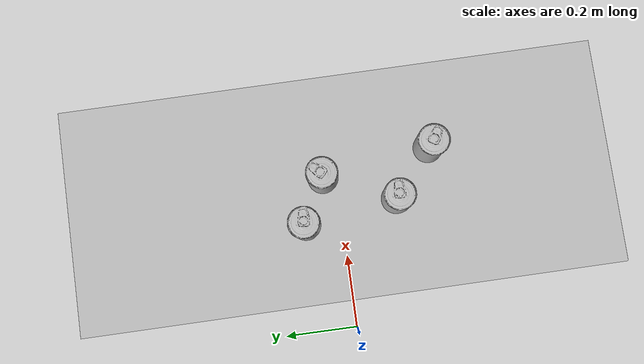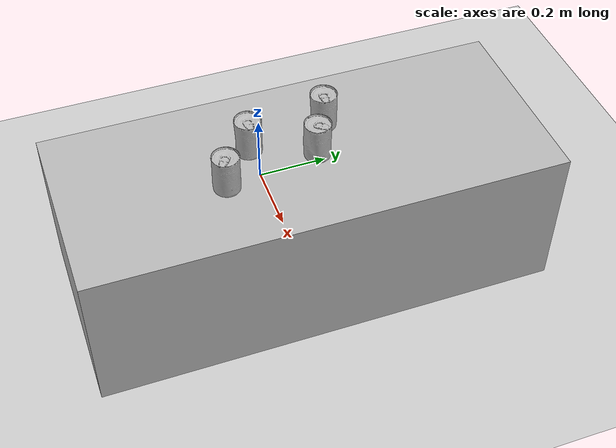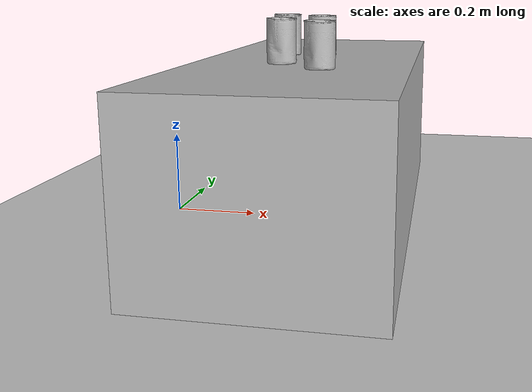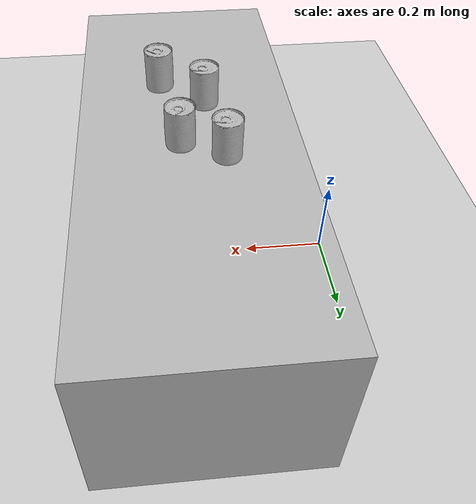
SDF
<?xml version="1.0" ?>
<sdf version="1.4">

  <world name="default">
    <include>
      <uri>model://ground_plane</uri>
    </include>

    <include>
      <uri>model://sun</uri>
    </include>

    <gravity>0 0 -9.8</gravity>
    <magnetic_field>6e-06 2.3e-05 -4.2e-05</magnetic_field>
    <atmosphere type='adiabatic'/>

    <light name='user_point_light' type='point'>
      <pose frame=''>0.730235 0 1 0 -0 0</pose>
      <diffuse>0.5 0.5 0.5 1</diffuse>
      <specular>0.1 0.1 0.1 1</specular>
      <attenuation>
        <range>20</range>
        <constant>0.5</constant>
        <linear>0.01</linear>
        <quadratic>0.001</quadratic>
      </attenuation>
      <cast_shadows>0</cast_shadows>
      <direction>0 0 -1</direction>
    </light>

    <!--physics type="ode"-->

    <include>
      <uri>model://MPNet_TableCenter</uri>
      <pose>0.35 0 0.2 0 0 0</pose>
    </include>

    <include>
      <uri>model://cracker_box</uri>
      <pose>0.276506 0.085502 0.4 0 0 -0.407427</pose>
    </include>

    <include>
      <uri>model://tomato_soup_can</uri>
      <pose>0.407051 -0.203939 0.4 0 0 -0.87517</pose>
    </include>

    <include>
      <uri>model://mustard_bottle</uri>
      <pose>0.306771 -0.117729 0.4 0 0 -0.358427</pose>
    </include>

    <include>
      <uri>model://sugar_box</uri>
      <pose>0.372242 0.036422 0.4 0 0 0.517227</pose>
    </include>

  </world>
</sdf>

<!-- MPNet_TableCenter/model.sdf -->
<sdf version="1.5">
  <model name="MPNet_TableCenter">
    <pose frame="world">1 -0.3 0.0 0 0 0</pose>
    <static>true</static>
    <link name="MPNet_TableCenter_link">
      <inertial>
        <mass>0.1</mass>
      </inertial>
      <visual name="MPNet_TableCenter_visual">
        <geometry>
          <box>
            <size>0.5 1.2 0.4</size>
          </box>
        </geometry>
      </visual>
      <collision name='MPNet_TableCenter_collision'>
        <laser_retro>0</laser_retro>
        <max_contacts>10</max_contacts>
        <geometry>
          <box>
            <size>0.5 1.2 0.4</size>
          </box>
        </geometry>
        <surface>
	  <friction>
            <ode>
              <mu>1</mu>
              <mu2>1</mu2>
              <fdir1>0 0 0</fdir1>
              <slip1>0</slip1>
              <slip2>0</slip2>
            </ode>
            <torsional>
              <coefficient>1</coefficient>
              <patch_radius>0</patch_radius>
              <surface_radius>0</surface_radius>
              <use_patch_radius>1</use_patch_radius>
              <ode>
                <slip>0</slip>
              </ode>
            </torsional>
          </friction>
          <bounce>
            <restitution_coefficient>0</restitution_coefficient>
            <threshold>1e+06</threshold>
          </bounce>
          <contact>
            <collide_without_contact>0</collide_without_contact>
            <collide_without_contact_bitmask>1</collide_without_contact_bitmask>
            <collide_bitmask>1</collide_bitmask>
            <ode>
              <soft_cfm>0</soft_cfm>
              <soft_erp>0.2</soft_erp>
              <kp>1e+13</kp>
              <kd>1</kd>
              <max_vel>0.01</max_vel>
              <min_depth>0</min_depth>
            </ode>
            <bullet>
              <split_impulse>1</split_impulse>
              <split_impulse_penetration_threshold>-0.01</split_impulse_penetration_threshold>
              <soft_cfm>0</soft_cfm>
              <soft_erp>0.2</soft_erp>
              <kp>1e+13</kp>
              <kd>1</kd>
            </bullet>
          </contact>
        </surface>
      </collision>
    </link>
  </model>
</sdf>

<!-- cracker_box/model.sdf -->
<sdf version='1.7'>
  <model name='cracker_box'>
    <link name='body'>
      <inertial>
        <mass>1</mass>
        <pose>-0.014854 -0.014205 0.102205 0 -0 0</pose>
        <inertia>
          <ixx>0.00582845</ixx>
          <ixy>0</ixy>
          <ixz>3.719e-05</ixz>
          <iyy>0.00409288</iyy>
          <iyz>1.327e-05</iyz>
          <izz>0.00243189</izz>
        </inertia>
      </inertial>
      <self_collide>1</self_collide>
      <enable_wind>0</enable_wind>
      <kinematic>0</kinematic>
      <pose>0 0 0 0 -0 0</pose>
      <gravity>1</gravity>
      <visual name='visual'>
        <geometry>
          <mesh>
            <uri>model://003_cracker_box_textured/textured.dae</uri>
          </mesh>
        </geometry>
        <material>
          <shader type='pixel'>
            <normal_map>__default__</normal_map>
          </shader>
        </material>
        <pose>0 0 0 0 -0 0</pose>
        <transparency>0</transparency>
        <cast_shadows>1</cast_shadows>
      </visual>
      <collision name='collision'>
        <laser_retro>0</laser_retro>
        <max_contacts>10</max_contacts>
        <pose>0 0 0 0 -0 0</pose>
        <geometry>
          <mesh>
            <uri>model://003_cracker_box_textured/textured.dae</uri>
            <scale>1 1 1</scale>
          </mesh>
        </geometry>
        <surface>
          <friction>
            <ode>
              <mu>0.8</mu>
              <mu2>0.8</mu2>
              <fdir1>0 0 0</fdir1>
              <slip1>0</slip1>
              <slip2>0</slip2>
            </ode>
            <torsional>
              <coefficient>1</coefficient>
              <patch_radius>0</patch_radius>
              <surface_radius>0</surface_radius>
              <use_patch_radius>1</use_patch_radius>
              <ode>
                <slip>0</slip>
              </ode>
            </torsional>
          </friction>
          <bounce>
            <restitution_coefficient>0</restitution_coefficient>
            <threshold>1e+06</threshold>
          </bounce>
          <contact>
            <collide_without_contact>0</collide_without_contact>
            <collide_without_contact_bitmask>1</collide_without_contact_bitmask>
            <collide_bitmask>1</collide_bitmask>
            <ode>
              <soft_cfm>0</soft_cfm>
              <soft_erp>0.2</soft_erp>
              <kp>1e+06</kp>
              <kd>1</kd>
              <max_vel>0</max_vel>
              <min_depth>0</min_depth>
            </ode>
            <bullet>
              <split_impulse>1</split_impulse>
              <split_impulse_penetration_threshold>-0.01</split_impulse_penetration_threshold>
              <soft_cfm>0</soft_cfm>
              <soft_erp>0.2</soft_erp>
              <kp>1e+06</kp>
              <kd>1</kd>
            </bullet>
          </contact>
        </surface>
      </collision>
    </link>
    <static>0</static>
    <allow_auto_disable>1</allow_auto_disable>
  </model>
</sdf>

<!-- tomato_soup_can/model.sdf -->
<sdf version="1.6">
  <model name="tomato_soup_can">
    <link name="link">
      <inertial>
        <mass>0.349</mass>
        <inertia>
          <ixx>0.000391694</ixx>
          <ixy>0.0</ixy>
          <ixz>0.0</ixz>
          <iyy>0.000391694</iyy> <!-- same as ixx -->
          <iyz>0.0</iyz>
          <izz>0.00019003</izz>
        </inertia>
        <pose>0 0 0.0505 0 0 0</pose>
      </inertial>
      <collision name="collision">
        <pose>0 0 0.0505 0 0 0</pose>
        <geometry>
          <cylinder>
            <radius>0.033</radius>
            <length>0.101</length>
          </cylinder>
        </geometry>
      </collision>
      <visual name="visual">
        <!-- 修正原配置导致的约 86 mm 偏移，对齐网格与圆柱 collision 中心。 -->
        <pose>0.001383130 0.000855565 -0.000503905 0 0 0</pose>
        <geometry>
          <mesh>
            <uri>model://tomato_soup_can/meshes/textured.dae</uri>
          </mesh>
        </geometry>
      </visual>
    </link>
  </model>
</sdf>

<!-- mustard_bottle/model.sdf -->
<sdf version="1.7">
<!--
This SDF file was automatically generated using a template modified
and authored by Adwait Naik. The moment of interia is not supposed to be changed.
-->
    <model name="mustard_bottle">
      <pose>1.0 2.0 3.0 -1.0 0 0</pose>
      <link name="link">
        <inertial>
          <inertia>
           <ixx>1.6697164243557222e-06</ixx>
           <ixy>-7.608043365683558e-23</ixy>
           <ixz>-8.85497422500391e-24</ixz>
           <iyy>1.454996005383364e-06</iyy>
           <iyz>5.1836699346339805e-24</iyz>
           <izz>4.2928863786736384e-07</izz>
          </inertia>
          <mass>0.0006120391571167176</mass>
        </inertial>
        <collision name="collision">
          <geometry>
          	<mesh>
             <uri>textured.dae</uri>
            </mesh>
          </geometry>
        </collision>

        <visual name="visual">
          <geometry>
          	<mesh>
            <uri>textured.dae</uri>
	        </mesh>
          </geometry>
        </visual>
      </link>
    </model>
</sdf>

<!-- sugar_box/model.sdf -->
<sdf version='1.7'>
  <model name='sugar_box'>
    <link name='body'>
      <inertial>
        <mass>1</mass>
        <pose>-0.007698 -0.017078 0.086024 0 -0 0</pose>
        <inertia>
          <ixx>0.00315303</ixx>
          <ixy>0</ixy>
          <ixz>9.374e-05</ixz>
          <iyy>0.00264458</iyy>
          <iyz>0</iyz>
          <izz>0.0007938</izz>
        </inertia>
      </inertial>
      <self_collide>1</self_collide>
      <enable_wind>0</enable_wind>
      <kinematic>0</kinematic>
      <pose>0 0 0 0 -0 0</pose>
      <gravity>1</gravity>
      <visual name='visual'>
        <geometry>
          <mesh>
            <uri>model://004_sugar_box_textured/textured.dae</uri>
          </mesh>
        </geometry>
        <material>
          <shader type='pixel'>
            <normal_map>__default__</normal_map>
          </shader>
        </material>
        <pose>0 0 0 0 -0 0</pose>
        <transparency>0</transparency>
        <cast_shadows>1</cast_shadows>
      </visual>
      <collision name='collision'>
        <laser_retro>0</laser_retro>
        <max_contacts>10</max_contacts>
        <pose>0 0 0 0 -0 0</pose>
        <geometry>
          <mesh>
            <uri>model://004_sugar_box_textured/textured.dae</uri>
            <scale>1 1 1</scale>
          </mesh>
        </geometry>
        <surface>
          <friction>
            <ode>
              <mu>0.8</mu>
              <mu2>0.8</mu2>
              <fdir1>0 0 0</fdir1>
              <slip1>0</slip1>
              <slip2>0</slip2>
            </ode>
            <torsional>
              <coefficient>1</coefficient>
              <patch_radius>0</patch_radius>
              <surface_radius>0</surface_radius>
              <use_patch_radius>1</use_patch_radius>
              <ode>
                <slip>0</slip>
              </ode>
            </torsional>
          </friction>
          <bounce>
            <restitution_coefficient>0</restitution_coefficient>
            <threshold>1e+06</threshold>
          </bounce>
          <contact>
            <collide_without_contact>0</collide_without_contact>
            <collide_without_contact_bitmask>1</collide_without_contact_bitmask>
            <collide_bitmask>1</collide_bitmask>
            <ode>
              <soft_cfm>0</soft_cfm>
              <soft_erp>0.2</soft_erp>
              <kp>1e+06</kp>
              <kd>1</kd>
              <max_vel>0</max_vel>
              <min_depth>0</min_depth>
            </ode>
            <bullet>
              <split_impulse>1</split_impulse>
              <split_impulse_penetration_threshold>-0.01</split_impulse_penetration_threshold>
              <soft_cfm>0</soft_cfm>
              <soft_erp>0.2</soft_erp>
              <kp>1e+06</kp>
              <kd>1</kd>
            </bullet>
          </contact>
        </surface>
      </collision>
    </link>
    <static>0</static>
    <allow_auto_disable>1</allow_auto_disable>
  </model>
</sdf>
